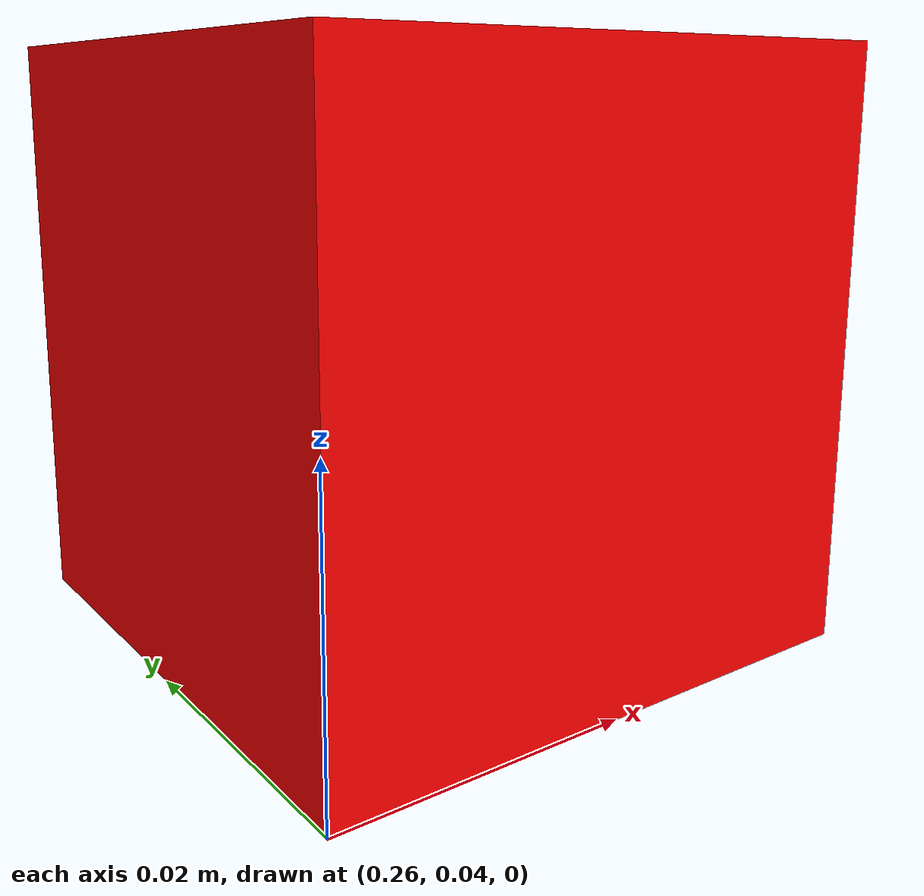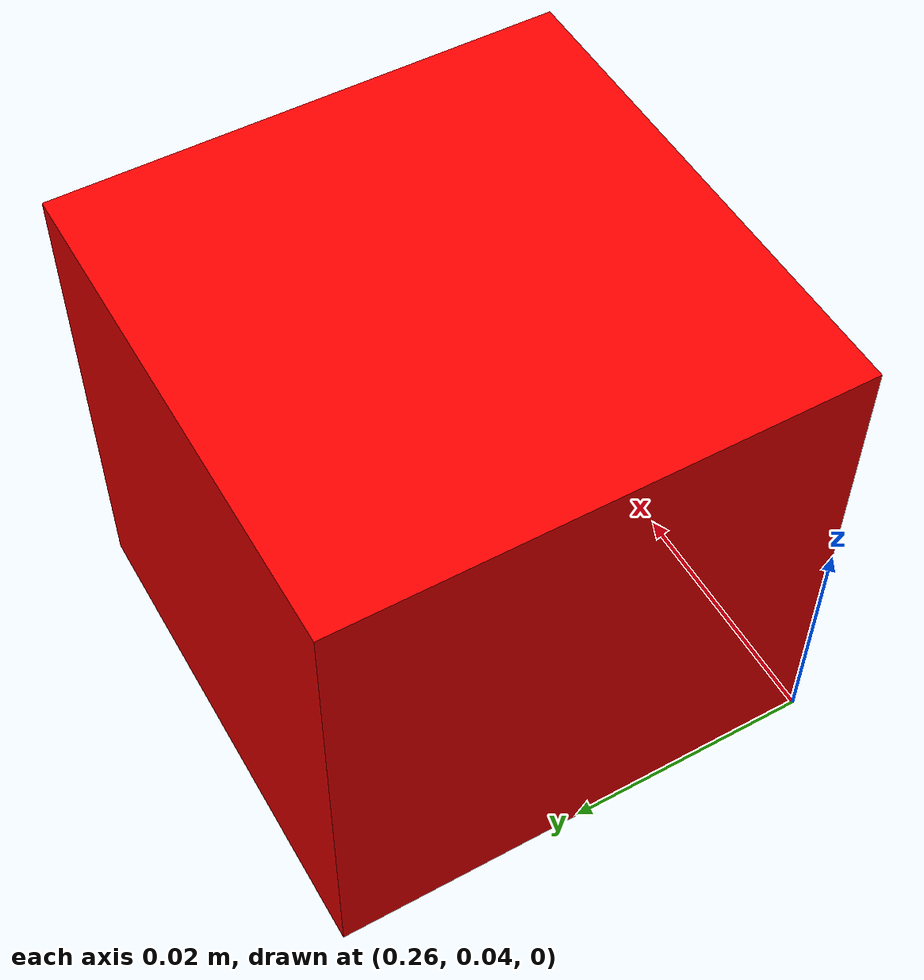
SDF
<?xml version="1.0" ?>
<sdf version="1.8">
  <model name="red_box_multi_a">
    <pose>0.28 0.06 0.02 0 0 0</pose>
    <link name="box_link">
      <inertial>
        <mass>0.08</mass>
        <inertia>
          <ixx>0.00006</ixx> <ixy>0</ixy> <ixz>0</ixz>
          <iyy>0.00006</iyy> <iyz>0</iyz>
          <izz>0.00006</izz>
        </inertia>
      </inertial>
      <collision name="collision">
        <geometry>
          <box>
            <size>0.04 0.04 0.04</size>
          </box>
        </geometry>
      </collision>
      <visual name="visual">
        <geometry>
          <box>
            <size>0.04 0.04 0.04</size>
          </box>
        </geometry>
        <material>
          <ambient>1 0 0 1</ambient>
          <diffuse>1 0 0 1</diffuse>
          <specular>0.2 0.2 0.2 1</specular>
        </material>
      </visual>
    </link>
  </model>
</sdf>
